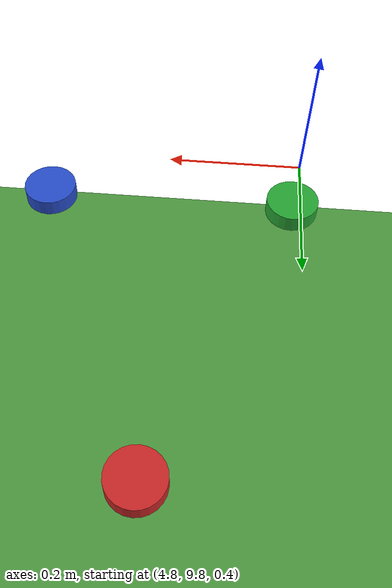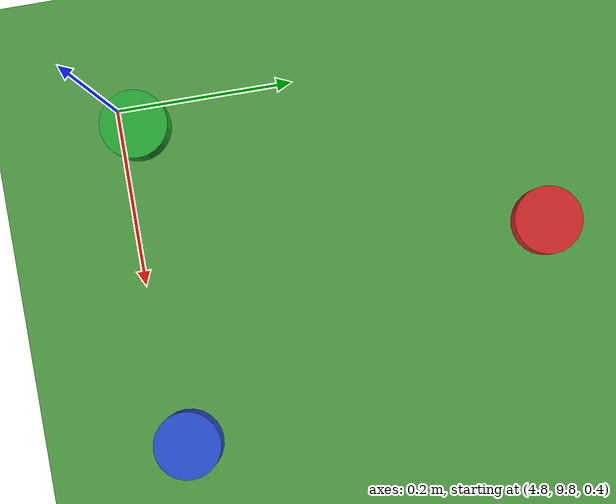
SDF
<sdf version="1.6">
 <world name="default">
  <scene><shadows>0</shadows></scene>
  <physics type="ode">
   <ode>
    <solver><type>quick</type><iters>100</iters><sor>1.0</sor></solver>
    <constraints>
     <cfm>0.0</cfm>
     <erp>0.2</erp>
     <contact_max_correcting_vel>0.1</contact_max_correcting_vel>
     <contact_surface_layer>0.0</contact_surface_layer>
    </constraints>
   </ode>
   <real_time_update_rate>-1</real_time_update_rate>
  </physics>
  <gravity>0 0 -9.8</gravity>
  <include><uri>model://sun</uri></include>
  <model name="ground_plane">
   <static>true</static>
   <link name="link">
    <collision name="collision">
     <geometry><plane><normal>0 0 1</normal><size>5000 5000</size></plane></geometry>
     <surface><friction><ode><mu>100</mu><mu2>50</mu2></ode></friction></surface>
    </collision>
    <visual name="background">
     <pose>000 0 -.1 0 0 0</pose>
     <cast_shadows>false</cast_shadows>
     <geometry><plane><normal>0 0 1</normal><size>50 50</size></plane></geometry>
     <material>
      <script><uri>file://media/materials/scripts/gazebo.material</uri><name>Gazebo/Grass</name></script>
     </material>
    </visual>
   </link>
  </model>
  <model name="tin_red">
   <static>false</static>
   <link name="tin_red_link">
    <pose>5 10.2828 .3135 0 0 0</pose>
    <collision name="collision">
     <geometry><cylinder><radius>0.0421</radius><length>0.027</length></cylinder></geometry>
     <surface><friction><ode><mu>100</mu><mu2>50</mu2></ode></friction></surface>
    </collision>
    <visual name="tin_red_visual">
     <cast_shadows>false</cast_shadows>
     <geometry><cylinder><radius>0.0421</radius><length>0.027</length></cylinder></geometry>
     <material>
      <script><uri>file://media/materials/scripts/gazebo.material</uri><name>Gazebo/Red</name></script>
     </material>
    </visual>
   </link>
  </model>
  <model name="tin_blue">
   <static>false</static>
   <link name="tin_blue_link">
    <pose>5.2 9.8 .3135 0 0 0</pose>
    <collision name="collision">
     <geometry><cylinder><radius>0.0421</radius><length>0.027</length></cylinder></geometry>
     <surface><friction><ode><mu>100</mu><mu2>50</mu2></ode></friction></surface>
    </collision>
    <visual name="tin_blue_visual">
     <cast_shadows>false</cast_shadows>
     <geometry><cylinder><radius>0.0421</radius><length>0.027</length></cylinder></geometry>
     <material>
      <script><uri>file://media/materials/scripts/gazebo.material</uri><name>Gazebo/Blue</name></script>
     </material>
    </visual>
   </link>
  </model>
  <model name="tin_green">
   <static>false</static>
   <link name="tin_green_link">
    <pose>4.8 9.8 .3135 0 0 0</pose>
    <collision name="collision">
     <geometry><cylinder><radius>0.0421</radius><length>0.027</length></cylinder></geometry>
     <surface><friction><ode><mu>100</mu><mu2>50</mu2></ode></friction></surface>
    </collision>
    <visual name="tin_green_visual">
     <cast_shadows>false</cast_shadows>
     <geometry><cylinder><radius>0.0421</radius><length>0.027</length></cylinder></geometry>
     <material>
      <script><uri>file://media/materials/scripts/gazebo.material</uri><name>Gazebo/Green</name></script>
     </material>
    </visual>
   </link>
  </model>
  <model name="landing_platform">
   <static>true</static>
   <link name="LP_link">
    <pose>10 -10.1 1.49 0 0 0</pose>
    <collision name="collision">
     <geometry><box><size>1.0 1.8 .01</size></box></geometry>
     <surface><friction><ode><mu>100</mu><mu2>50</mu2></ode></friction></surface>
    </collision>
    <visual name="LP_visual">
     <cast_shadows>false</cast_shadows>
     <geometry><box><size>1.0 1.8 .01</size></box></geometry>
     <material>
      <script><uri>file://media/materials/scripts/gazebo.material</uri><name>Gazebo/White</name></script>
     </material>
    </visual>
   </link>
  </model>
 </world>
</sdf>
